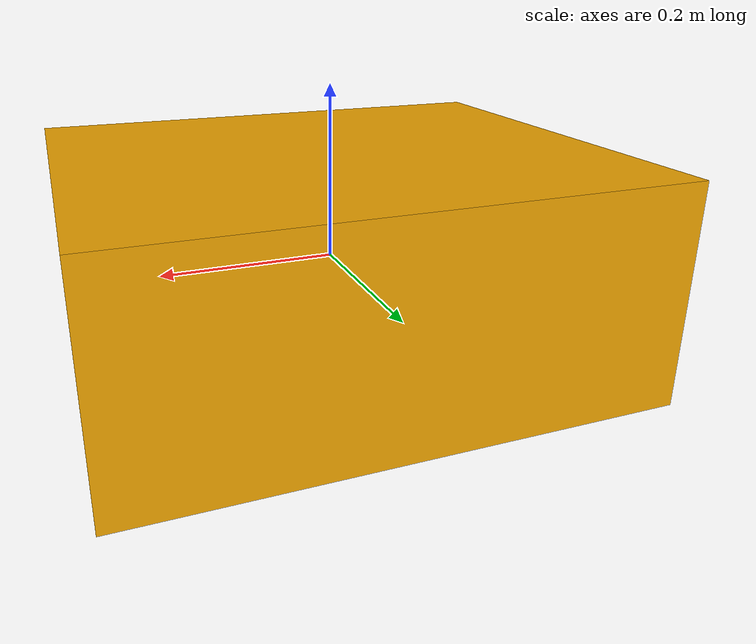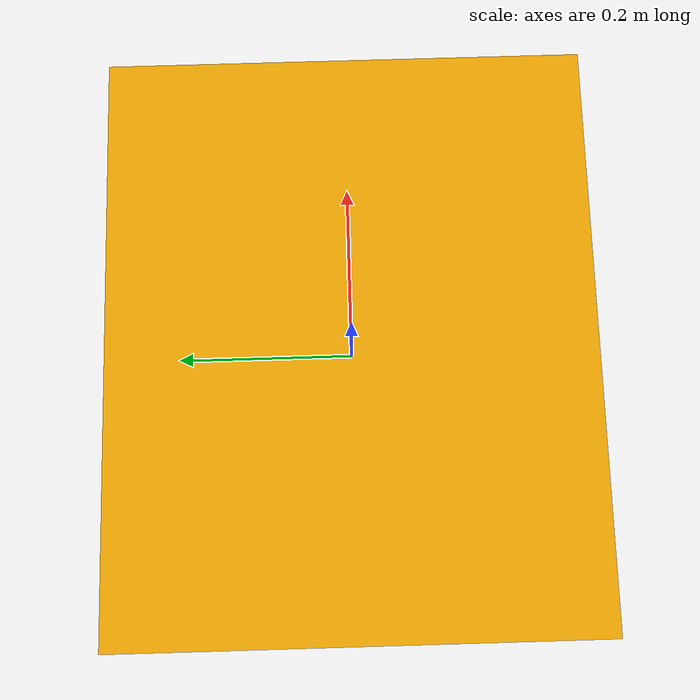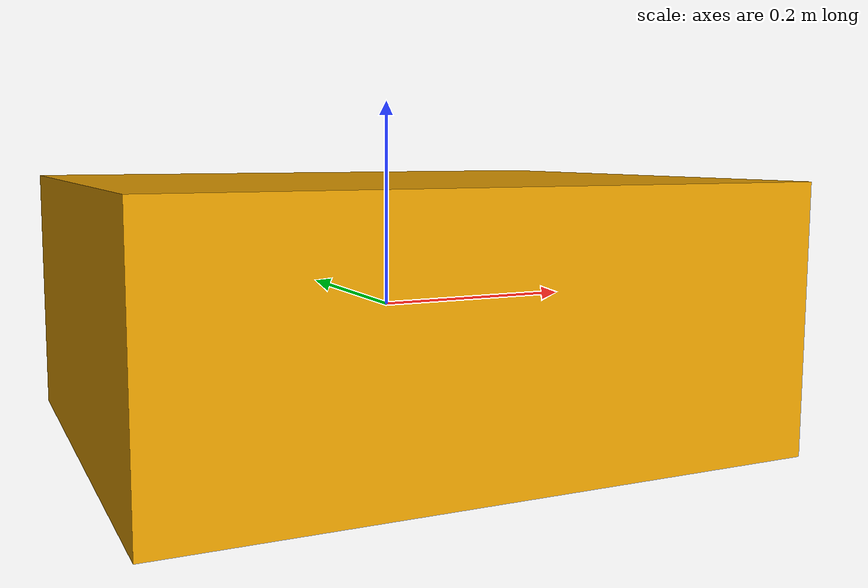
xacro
<?xml version="1.0"?>
<robot xmlns:xacro="http://www.ros.org/wiki/xacro" name="guide_amr">
  <link name="base_link">
    <visual><geometry><box size="0.60 0.50 0.25"/></geometry></visual>
    <collision><geometry><box size="0.60 0.50 0.25"/></geometry></collision>
    <inertial><mass value="20.0"/><origin xyz="0 0 0"/><inertia ixx="0.47" ixy="0" ixz="0" iyy="0.75" iyz="0" izz="0.82"/></inertial>
  </link>
  <link name="laser_link"/>
  <joint name="laser_joint" type="fixed"><parent link="base_link"/><child link="laser_link"/><origin xyz="0.20 0 0.25"/></joint>
  <link name="imu_link"/>
  <joint name="imu_joint" type="fixed"><parent link="base_link"/><child link="imu_link"/><origin xyz="0 0 0.12"/></joint>
  <link name="camera_link"/>
  <joint name="camera_joint" type="fixed"><parent link="base_link"/><child link="camera_link"/><origin xyz="0.25 0 0.35"/></joint>
</robot>
